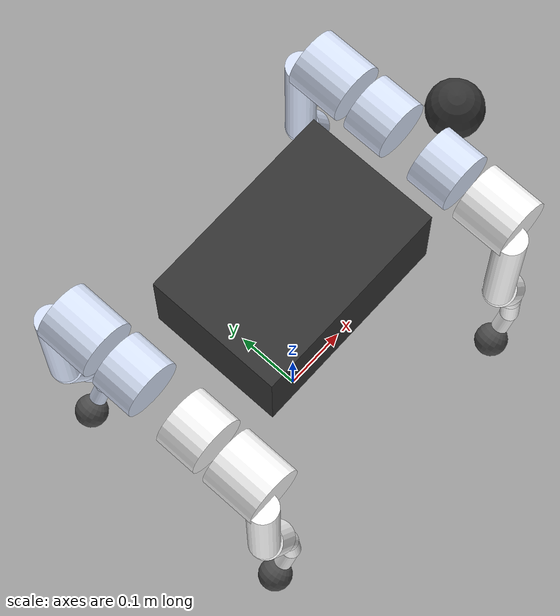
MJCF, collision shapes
<mujoco model="boying">
  <compiler angle="radian" meshdir="assets" autolimits="true" />

  <default>
    <default class="boying">
      <geom friction="0.4" margin="0.001" condim="1"/>
      <joint axis="0 1 0" damping="0.1" armature="0.01" frictionloss="1.6"/>
      <default class="abduction">
        <joint axis="1 0 0" range="-0.69813 0.69813"/>
      </default>
      <default class="hip">
        <joint range="-0.175 4.712"/>
      </default>
      <default class="knee">
        <joint range="-2.7478 -0.9269"/>
      </default>
      <default class="visual">
        <geom type="mesh" contype="0" conaffinity="0" group="2"/>
      </default>
      <default class="collision">
        <geom group="3"/>
      </default>
    </default>
  </default>

  <asset>
    <mesh name="base"    content_type="model/stl" file="base.STL"/>
    <mesh name="head"    content_type="model/stl" file="head.STL"/>
    <mesh name="FL_hip"  content_type="model/stl" file="FL_hip.STL"/>
    <mesh name="L_thigh" content_type="model/stl" file="L_thigh.STL"/>
    <mesh name="L_calf"  content_type="model/stl" file="L_calf.STL"/>
    <mesh name="L_foot"  content_type="model/stl" file="L_foot.STL"/>
    <mesh name="FR_hip"  content_type="model/stl" file="FR_hip.STL"/>
    <mesh name="R_thigh" content_type="model/stl" file="R_thigh.STL"/>
    <mesh name="R_calf"  content_type="model/stl" file="R_calf.STL"/>
    <mesh name="R_foot"  content_type="model/stl" file="R_foot.STL"/>
    <mesh name="RL_hip"  content_type="model/stl" file="RL_hip.STL"/>
    <mesh name="RR_hip"  content_type="model/stl" file="RR_hip.STL"/>
  </asset>

  <worldbody>
    <body name="base" pos="0 0 0.50" childclass="boying">
      <inertial pos="0.0334842 0.00147378 -0.0107392"
                quat="-0.00245763 0.699039 -0.00181381 0.715077"
                mass="8.98346"
                diaginertia="0.176459 0.170398 0.0471226"/>
      <joint name="floating_to_word" type="free"/>
      <!-- visual -->
      <geom class="visual" rgba="0.203922 0.203922 0.203922 1" mesh="base"/>
      <geom class="visual" rgba="0.203922 0.203922 0.203922 1" mesh="head"/>
      <!-- base torso collision -->
      <geom pos="0 0 0.005" rgba="0.2039 0.2039 0.2039 1" group="3" contype="1" conaffinity="1" name="base1_collision" type="box" size="0.15 0.1 0.068" />
      <!-- head collision -->
      <geom pos="0.321 0 -0.031" rgba="0.2039 0.2039 0.2039 1" group="3" contype="1" conaffinity="1" name="head2_collision" type="sphere" size="0.041" />
      <site name="imu" pos="0 0 0" group="5"/>

      <!-- ===== FL leg ===== -->
      <body name="FL_hip" pos="0.23795 0.055027 0">
        <inertial pos="-0.0071 0.000505 0" quat="0.503772 0.503772 0.496199 0.496199" mass="0.832922" diaginertia="0.00100309 0.000871 0.000606909"/>
        <joint name="FL_hip_joint" pos="0 0 0" axis="1 0 0" range="-0.681 0.681"/>
        <geom class="visual" rgba="0.86667 0.9098 1 1" mesh="FL_hip"/>
        <geom name="FL_hip_collision" class="collision" size="0.044 0.031" quat="0.707107 0.707107 0 0" type="cylinder" rgba="0.86667 0.9098 1 1"/>
        <body name="FL_thigh">
          <inertial pos="-0.003876 0.099428 -0.043098" quat="0.992467 0.111413 0.029126 0.041808" mass="1.518179" diaginertia="0.010166 0.009743 0.001533"/>
          <joint name="FL_thigh_joint" pos="0 0 0" axis="0 1 0" range="-0.175 4.712"/>
          <geom class="visual" rgba="0.86667 0.9098 1 1" mesh="L_thigh"/>
          <geom pos="0 0.0875 0" quat="0.7071068 0.7071068 0 0" rgba="0.8667 0.9098 1 1" group="3" contype="1" conaffinity="1" name="FL_thigh1_collision" type="cylinder" size="0.044 0.04" />
          <geom pos="-0.02 0.127 -0.09565" rgba="0.8667 0.9098 1 1" group="3" contype="1" conaffinity="1" name="FL_thigh2_collision" type="cylinder" size="0.022 0.1" />
          <geom pos="-0.006 0.127 -0.219" quat="0.9738938 0 -0.227004 0" rgba="0.8667 0.9098 1 1" group="3" contype="1" conaffinity="1" name="FL_thigh3_collision" type="cylinder" size="0.025 0.0275" />
          <body name="FL_calf" pos="0 0.1267 -0.235" quat="0.894493 0 0.447082 0">
            <inertial pos="0.101823 6.31718e-05 -0.0647394" quat="0.320902 0.630731 0.628578 0.32263" mass="0.190862" diaginertia="0.00164183 0.00160675 5.20806e-05"/>
            <joint name="FL_calf_joint" pos="0 0 0" axis="0 1 0" range="-2.7478 -0.9269"/>
            <geom class="visual" rgba="0.86667 0.9098 1 1" mesh="L_calf"/>
            <geom class="visual" rgba="0.29804 0.29804 0.29804 1" mesh="L_foot"/>
            <geom name="FL_calf1_collision" class="collision" size="0.015 0.048837"  pos="0.050640 0 -0.025016" quat="0.598872 0 0.800845 0"   type="cylinder" rgba="0.86667 0.9098 1 1"/>
            <geom name="FL_calf2_collision" class="collision" size="0.014 0.036148"  pos="0.128041 0 -0.058136" quat="0.482546 0 0.875871 0"   type="cylinder" rgba="0.86667 0.9098 1 1"/>
            <geom name="FL_calf3_collision" class="collision" size="0.013 0.016670"   pos="0.164320 0 -0.093106" quat="0.174336 0 0.984686 0"    type="cylinder" rgba="0.86667 0.9098 1 1"/>
            <geom name="FL_foot_collision"  class="collision" size="0.025"        pos="0.18 0 -0.136"    rgba="0.29804 0.29804 0.29804 1" priority="1" condim="6" friction="0.6 0.02 0.01"/>
            <site name="FL" pos="0.18 0 -0.136" type="sphere" size="0.025" group="5"/>
          </body>
        </body>
      </body>

      <!-- ===== FR leg ===== -->
      <body name="FR_hip" pos="0.23795 -0.054973 0">
        <inertial pos="-0.0071 -0.000505 0" quat="0.496199 0.496199 0.503772 0.503772" mass="0.832922" diaginertia="0.00100309 0.000871 0.000606909"/>
        <joint name="FR_hip_joint" pos="0 0 0" axis="1 0 0" range="-0.681 0.681"/>
        <geom class="visual" rgba="0.86667 0.9098 1 1" mesh="FR_hip"/>
        <geom name="FR_hip_collision" class="collision" size="0.044 0.031" quat="0.707107 0.707107 0 0" type="cylinder" rgba="0.86667 0.9098 1 1"/>
        <body name="FR_thigh">
          <inertial pos="-0.003876 -0.099428 -0.043098" quat="0.992467 -0.111413 0.029126 -0.041808" mass="1.518179" diaginertia="0.010166 0.009743 0.001533"/>
          <joint name="FR_thigh_joint" pos="0 0 0" axis="0 1 0" range="-0.175 4.712"/>
          <geom class="visual" rgba="1 1 1 1" mesh="R_thigh"/>
          <geom pos="0 -0.0875 0" quat="0.7071068 0.7071068 0 0" rgba="1 1 1 1" group="3" contype="1" conaffinity="1" name="FR_thigh1_collision" type="cylinder" size="0.044 0.04" />
          <geom pos="-0.02 -0.127 -0.09565" rgba="1 1 1 1" group="3" contype="1" conaffinity="1" name="FR_thigh2_collision" type="cylinder" size="0.022 0.1" />
          <geom pos="-0.006 -0.127 -0.219" quat="0.9738938 0 -0.227004 0" rgba="1 1 1 1" group="3" contype="1" conaffinity="1" name="FR_thigh3_collision" type="cylinder" size="0.025 0.0275" />
          <body name="FR_calf" pos="0 -0.1267 -0.235" quat="0.894493 0 0.447082 0">
            <inertial pos="0.101824 -6.31727e-05 -0.0647398" quat="0.32263 0.628578 0.630731 0.320901" mass="0.190863" diaginertia="0.00164184 0.00160676 5.20807e-05"/>
            <joint name="FR_calf_joint" pos="0 0 0" axis="0 1 0" range="-2.7478 -0.9269"/>
            <geom class="visual" rgba="1 1 1 1" mesh="R_calf"/>
            <geom class="visual" rgba="0.29804 0.29804 0.29804 1" mesh="R_foot"/>
            <geom name="FR_calf1_collision" class="collision" size="0.015 0.048837"  pos="0.050640 0 -0.025016" quat="0.598872 0 0.800845 0"   type="cylinder" rgba="1 1 1 1"/>
            <geom name="FR_calf2_collision" class="collision" size="0.014 0.036148"  pos="0.128041 0 -0.058136" quat="0.482546 0 0.875871 0"   type="cylinder" rgba="1 1 1 1"/>
            <geom name="FR_calf3_collision" class="collision" size="0.013 0.016670"   pos="0.164320 0 -0.093106" quat="0.174336 0 0.984686 0"    type="cylinder" rgba="1 1 1 1"/>
            <geom name="FR_foot_collision"  class="collision" size="0.025"        pos="0.18 0 -0.136"    rgba="0.29804 0.29804 0.29804 1" priority="1" condim="6" friction="0.6 0.02 0.01"/>
            <site name="FR" pos="0.18 0 -0.136" type="sphere" size="0.025" group="5"/>
          </body>
        </body>
      </body>

      <!-- ===== RL leg ===== -->
      <body name="RL_hip" pos="-0.23805 0.055027 0">
        <inertial pos="0.0071 0.000505 0" quat="0.496199 0.496199 0.503772 0.503772" mass="0.832922" diaginertia="0.00100309 0.000871 0.000606909"/>
        <joint name="RL_hip_joint" pos="0 0 0" axis="1 0 0" range="-0.681 0.681"/>
        <geom class="visual" rgba="0.866667 0.909804 1 1" mesh="RL_hip"/>
        <geom name="RL_hip_collision" class="collision" size="0.044 0.031" quat="0.707107 0.707107 0 0" type="cylinder" rgba="0.866667 0.909804 1 1"/>
        <body name="RL_thigh">
          <inertial pos="-0.003876 0.099428 -0.043098" quat="0.992467 0.111413 0.029126 0.041808" mass="1.518179" diaginertia="0.010166 0.009743 0.001533"/>
          <joint name="RL_thigh_joint" pos="0 0 0" axis="0 1 0" range="-0.175 4.712"/>
          <geom class="visual" rgba="0.86667 0.9098 1 1" mesh="L_thigh"/>
          <geom pos="0 0.0875 0" quat="0.7071068 0.7071068 0 0" rgba="0.8667 0.9098 1 1" group="3" contype="1" conaffinity="1" name="RL_thigh1_collision" type="cylinder" size="0.044 0.04" />
          <geom pos="-0.02 0.127 -0.09565" rgba="0.8667 0.9098 1 1" group="3" contype="1" conaffinity="1" name="RL_thigh2_collision" type="cylinder" size="0.022 0.1" />
          <geom pos="-0.006 0.127 -0.219" quat="0.9738938 0 -0.227004 0" rgba="0.8667 0.9098 1 1" group="3" contype="1" conaffinity="1" name="RL_thigh3_collision" type="cylinder" size="0.025 0.0275" />
          <body name="RL_calf" pos="0 0.1267 -0.235" quat="0.894493 0 0.447082 0">
            <inertial pos="0.101823 6.31718e-05 -0.0647394" quat="0.320902 0.630731 0.628578 0.32263" mass="0.190862" diaginertia="0.00164183 0.00160675 5.20806e-05"/>
            <joint name="RL_calf_joint" pos="0 0 0" axis="0 1 0" range="-2.7478 -0.9269"/>
            <geom class="visual" rgba="0.86667 0.9098 1 1" mesh="L_calf"/>
            <geom class="visual" rgba="0.29804 0.29804 0.29804 1" mesh="L_foot"/>
            <geom name="RL_calf1_collision" class="collision" size="0.015 0.048837"  pos="0.050640 0 -0.025016" quat="0.598872 0 0.800845 0"   type="cylinder" rgba="0.86667 0.9098 1 1"/>
            <geom name="RL_calf2_collision" class="collision" size="0.014 0.036148"  pos="0.128041 0 -0.058136" quat="0.482546 0 0.875871 0"   type="cylinder" rgba="0.86667 0.9098 1 1"/>
            <geom name="RL_calf3_collision" class="collision" size="0.013 0.016670"   pos="0.164320 0 -0.093106" quat="0.174336 0 0.984686 0"    type="cylinder" rgba="0.86667 0.9098 1 1"/>
            <geom name="RL_foot_collision"  class="collision" size="0.025"        pos="0.18 0 -0.136"    rgba="0.29804 0.29804 0.29804 1" priority="1" condim="6" friction="0.6 0.02 0.01"/>
            <site name="RL" pos="0.18 0 -0.136" type="sphere" size="0.025" group="5"/>
          </body>
        </body>
      </body>

      <!-- ===== RR leg ===== -->
      <body name="RR_hip" pos="-0.23805 -0.054973 0">
        <inertial pos="0.0071 -0.000505 0" quat="0.503772 0.503772 0.496199 0.496199" mass="0.832922" diaginertia="0.00100309 0.000871 0.000606909"/>
        <joint name="RR_hip_joint" pos="0 0 0" axis="1 0 0" range="-0.681 0.681"/>
        <geom class="visual" rgba="1 1 1 1" mesh="RR_hip"/>
        <geom name="RR_hip_collision" class="collision" size="0.044 0.031" quat="0.707107 0.707107 0 0" type="cylinder" rgba="1 1 1 1"/>
        <body name="RR_thigh">
          <inertial pos="-0.003876 -0.099428 -0.043098" quat="0.992467 -0.111413 0.029126 -0.041808" mass="1.518179" diaginertia="0.010166 0.009743 0.001533"/>
          <joint name="RR_thigh_joint" pos="0 0 0" axis="0 1 0" range="-0.175 4.712"/>
          <geom class="visual" rgba="1 1 1 1" mesh="R_thigh"/>
          <geom pos="0 -0.0875 0" quat="0.7071068 0.7071068 0 0" rgba="1 1 1 1" group="3" contype="1" conaffinity="1" name="RR_thigh1_collision" type="cylinder" size="0.044 0.04" />
          <geom pos="-0.02 -0.127 -0.09565" rgba="1 1 1 1" group="3" contype="1" conaffinity="1" name="RR_thigh2_collision" type="cylinder" size="0.022 0.1" />
          <geom pos="-0.006 -0.127 -0.219" quat="0.9738938 0 -0.227004 0" rgba="1 1 1 1" group="3" contype="1" conaffinity="1" name="RR_thigh3_collision" type="cylinder" size="0.025 0.0275" />
          <body name="RR_calf" pos="0 -0.1267 -0.235" quat="0.894493 0 0.447082 0">
            <inertial pos="0.101824 -6.31727e-05 -0.0647398" quat="0.32263 0.628578 0.630731 0.320901" mass="0.190863" diaginertia="0.00164184 0.00160676 5.20807e-05"/>
            <joint name="RR_calf_joint" pos="0 0 0" axis="0 1 0" range="-2.7478 -0.9269"/>
            <geom class="visual" rgba="1 1 1 1" mesh="R_calf"/>
            <geom class="visual" rgba="0.29804 0.29804 0.29804 1" mesh="R_foot"/>
            <geom name="RR_calf1_collision" class="collision" size="0.015 0.048837"  pos="0.050640 0 -0.025016" quat="0.598872 0 0.800845 0"   type="cylinder" rgba="1 1 1 1"/>
            <geom name="RR_calf2_collision" class="collision" size="0.014 0.036148"  pos="0.128041 0 -0.058136" quat="0.482546 0 0.875871 0"   type="cylinder" rgba="1 1 1 1"/>
            <geom name="RR_calf3_collision" class="collision" size="0.013 0.016670"   pos="0.164320 0 -0.093106" quat="0.174336 0 0.984686 0"    type="cylinder" rgba="1 1 1 1"/>
            <geom name="RR_foot_collision"  class="collision" size="0.025"        pos="0.18 0 -0.136"    rgba="0.29804 0.29804 0.29804 1" priority="1" condim="6" friction="0.6 0.02 0.01"/>
            <site name="RR" pos="0.18 0 -0.136" type="sphere" size="0.025" group="5"/>
          </body>
        </body>
      </body>

    </body>
  </worldbody>

  <sensor>
    <gyro          name="imu_ang_vel"  site="imu"/>
    <velocimeter   name="imu_lin_vel"  site="imu"/>
    <accelerometer name="imu_lin_acc"  site="imu"/>
    <subtreeangmom name="root_angmom"  body="base"/>
  </sensor>

  <keyframe>
    <key name="home"
         qpos="0 0 0.27 1 0 0 0  0.10 0.80 -1.80  -0.10 0.80 -1.80  0.10 0.90 -1.70  -0.10 0.90 -1.70"
         ctrl="0.10 0.80 -1.80  -0.10 0.80 -1.80  0.10 0.90 -1.70  -0.10 0.90 -1.70"/>
  </keyframe>

</mujoco>
